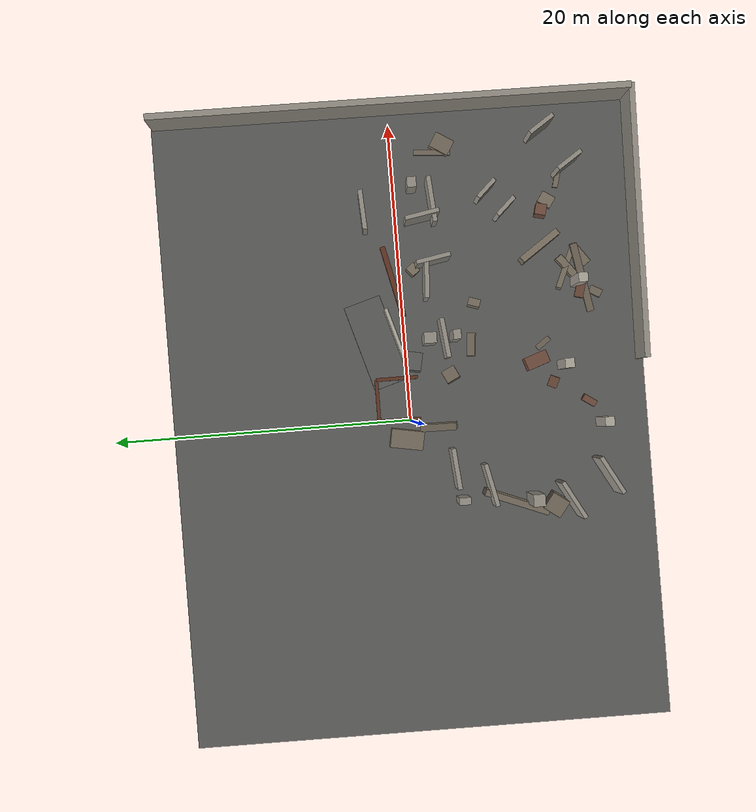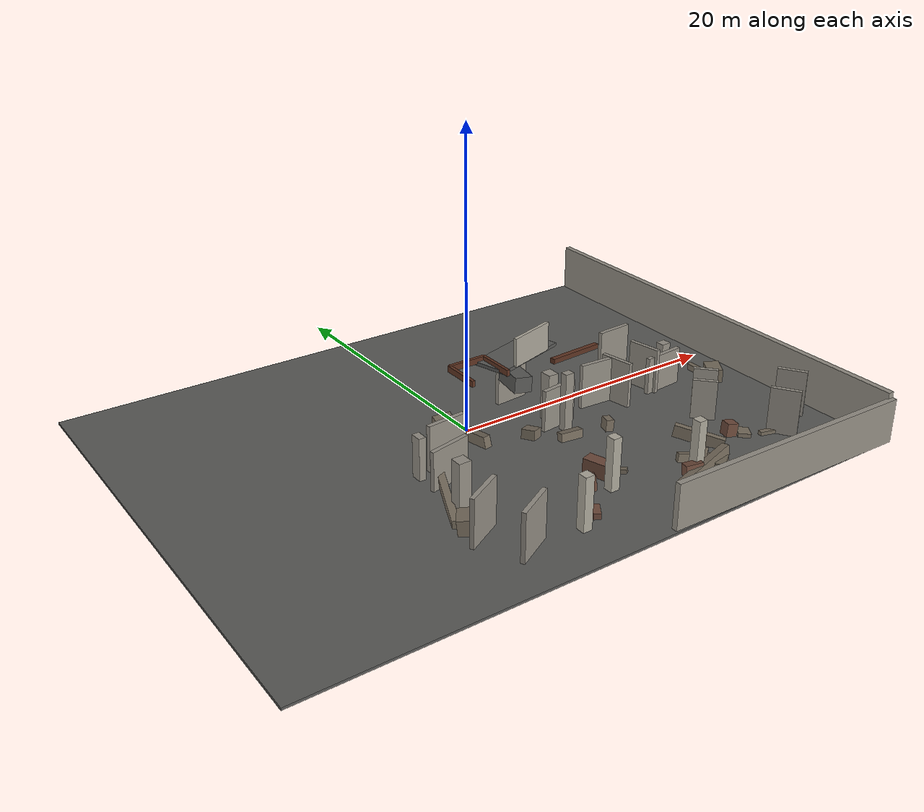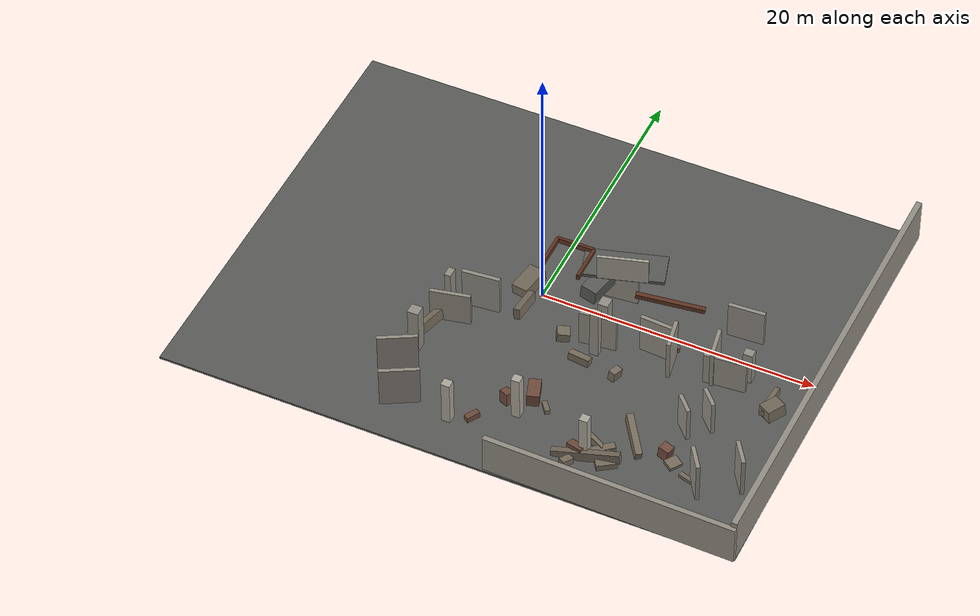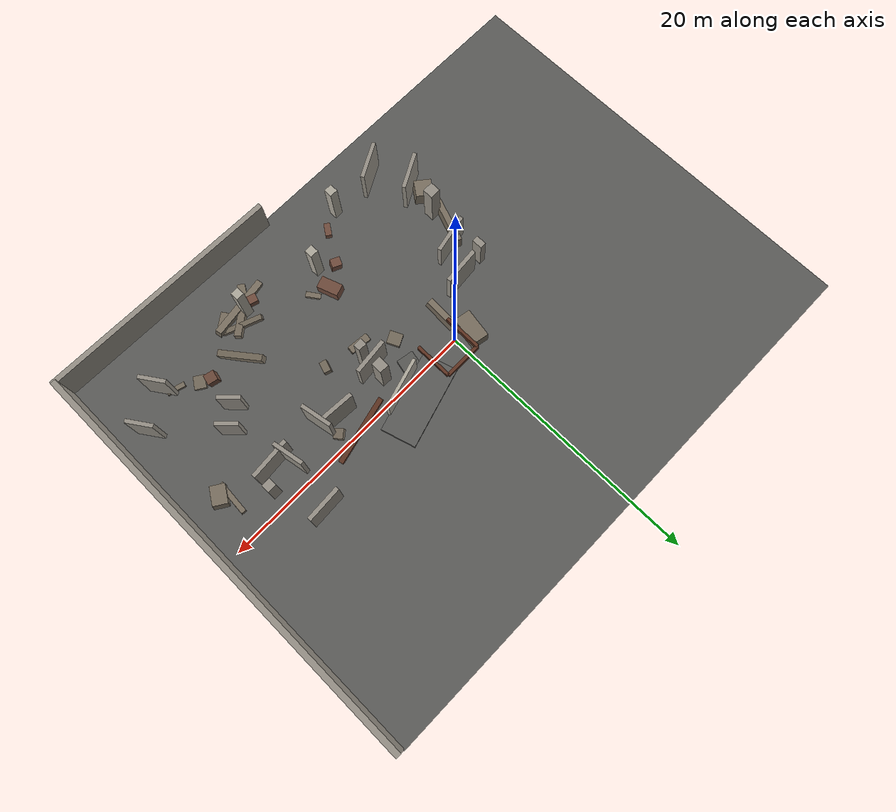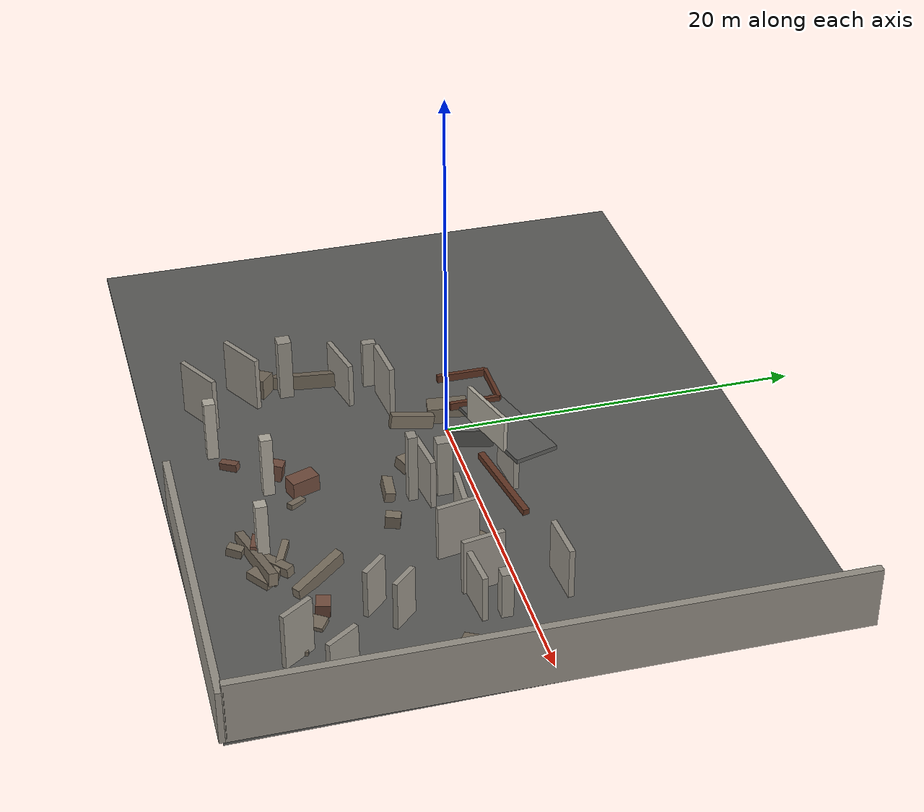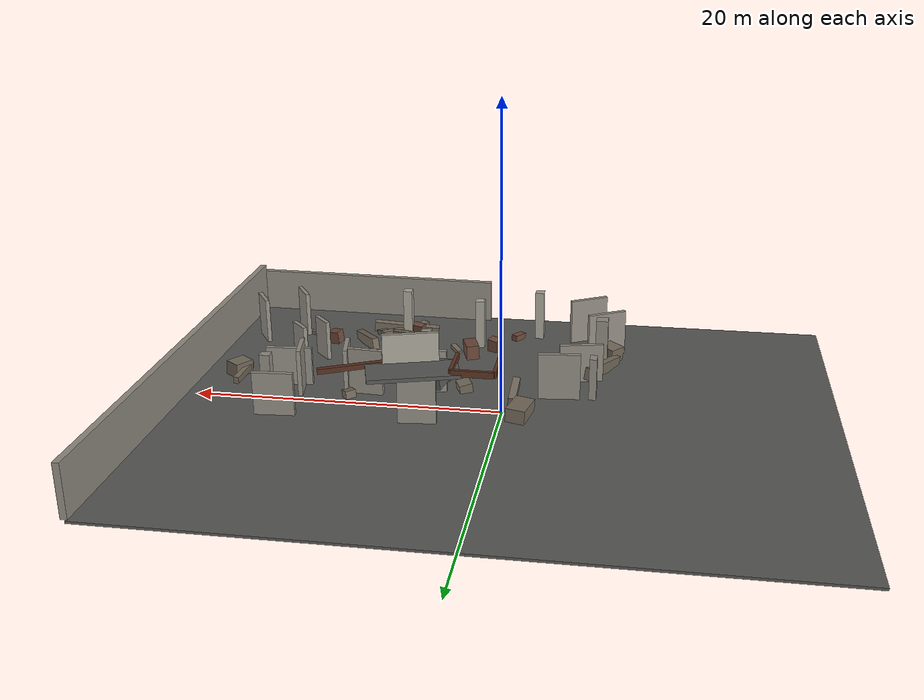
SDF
<sdf version="1.6">
 <model name="ruins_urban_01_medium">
  <static>true</static>
  <link name="000_floor_slab">
   <pose>0.00000 0.00000 -0.08000 0.00000 0.00000 0.00000</pose>
   <visual name="visual">
    <geometry><box><size>42.00000 32.00000 0.16000</size></box></geometry>
    <material>
     <ambient>0.350 0.350 0.340 1</ambient>
     <diffuse>0.350 0.350 0.340 1</diffuse>
     <specular>0.03 0.03 0.03 1</specular>
    </material>
   </visual>
   <collision name="collision">
    <geometry><box><size>42.00000 32.00000 0.16000</size></box></geometry>
    <surface>
     <contact><collide_bitmask>0x01</collide_bitmask></contact>
     <friction><ode><mu>1.0</mu><mu2>1.0</mu2></ode></friction>
    </surface>
   </collision>
  </link>
  <link name="004_south_boundary_east">
   <pose>12.00000 -15.85000 1.50000 0.00000 0.00000 -0.01800</pose>
   <visual name="visual">
    <geometry><box><size>18.00000 0.38000 3.00000</size></box></geometry>
    <material>
     <ambient>0.580 0.560 0.520 1</ambient>
     <diffuse>0.580 0.560 0.520 1</diffuse>
     <specular>0.03 0.03 0.03 1</specular>
    </material>
   </visual>
   <collision name="collision">
    <geometry><box><size>18.00000 0.38000 3.00000</size></box></geometry>
    <surface>
     <contact><collide_bitmask>0x01</collide_bitmask></contact>
     <friction><ode><mu>1.0</mu><mu2>1.0</mu2></ode></friction>
    </surface>
   </collision>
  </link>
  <link name="007_east_boundary">
   <pose>20.95000 0.00000 1.70000 0.00000 0.00000 -0.01000</pose>
   <visual name="visual">
    <geometry><box><size>0.42000 31.80000 3.40000</size></box></geometry>
    <material>
     <ambient>0.580 0.560 0.520 1</ambient>
     <diffuse>0.580 0.560 0.520 1</diffuse>
     <specular>0.03 0.03 0.03 1</specular>
    </material>
   </visual>
   <collision name="collision">
    <geometry><box><size>0.42000 31.80000 3.40000</size></box></geometry>
    <surface>
     <contact><collide_bitmask>0x01</collide_bitmask></contact>
     <friction><ode><mu>1.0</mu><mu2>1.0</mu2></ode></friction>
    </surface>
   </collision>
  </link>
  <link name="024_ground_corridor_s4_s5_left">
   <pose>-5.96349 -10.19194 1.57500 0.00000 0.00000 0.49935</pose>
   <visual name="visual">
    <geometry><box><size>2.76498 0.28000 3.15000</size></box></geometry>
    <material>
     <ambient>0.580 0.560 0.520 1</ambient>
     <diffuse>0.580 0.560 0.520 1</diffuse>
     <specular>0.03 0.03 0.03 1</specular>
    </material>
   </visual>
   <collision name="collision">
    <geometry><box><size>2.76498 0.28000 3.15000</size></box></geometry>
    <surface>
     <contact><collide_bitmask>0x01</collide_bitmask></contact>
     <friction><ode><mu>1.0</mu><mu2>1.0</mu2></ode></friction>
    </surface>
   </collision>
  </link>
  <link name="025_ground_corridor_s4_s5_right">
   <pose>-4.53651 -12.80806 1.57500 0.00000 0.00000 0.49935</pose>
   <visual name="visual">
    <geometry><box><size>2.76498 0.28000 3.15000</size></box></geometry>
    <material>
     <ambient>0.580 0.560 0.520 1</ambient>
     <diffuse>0.580 0.560 0.520 1</diffuse>
     <specular>0.03 0.03 0.03 1</specular>
    </material>
   </visual>
   <collision name="collision">
    <geometry><box><size>2.76498 0.28000 3.15000</size></box></geometry>
    <surface>
     <contact><collide_bitmask>0x01</collide_bitmask></contact>
     <friction><ode><mu>1.0</mu><mu2>1.0</mu2></ode></friction>
    </surface>
   </collision>
  </link>
  <link name="032_ground_corridor_g7_es1_left">
   <pose>13.46759 -1.69253 1.57500 0.00000 0.00000 -1.39713</pose>
   <visual name="visual">
    <geometry><box><size>2.28705 0.28000 3.15000</size></box></geometry>
    <material>
     <ambient>0.580 0.560 0.520 1</ambient>
     <diffuse>0.580 0.560 0.520 1</diffuse>
     <specular>0.03 0.03 0.03 1</specular>
    </material>
   </visual>
   <collision name="collision">
    <geometry><box><size>2.28705 0.28000 3.15000</size></box></geometry>
    <surface>
     <contact><collide_bitmask>0x01</collide_bitmask></contact>
     <friction><ode><mu>1.0</mu><mu2>1.0</mu2></ode></friction>
    </surface>
   </collision>
  </link>
  <link name="033_ground_corridor_g7_es1_right">
   <pose>10.53241 -2.20747 1.57500 0.00000 0.00000 -1.39713</pose>
   <visual name="visual">
    <geometry><box><size>2.28705 0.28000 3.15000</size></box></geometry>
    <material>
     <ambient>0.580 0.560 0.520 1</ambient>
     <diffuse>0.580 0.560 0.520 1</diffuse>
     <specular>0.03 0.03 0.03 1</specular>
    </material>
   </visual>
   <collision name="collision">
    <geometry><box><size>2.28705 0.28000 3.15000</size></box></geometry>
    <surface>
     <contact><collide_bitmask>0x01</collide_bitmask></contact>
     <friction><ode><mu>1.0</mu><mu2>1.0</mu2></ode></friction>
    </surface>
   </collision>
  </link>
  <link name="034_ground_corridor_es1_es2_left">
   <pose>14.87840 -6.05557 1.37500 0.00000 0.00000 -0.81317</pose>
   <visual name="visual">
    <geometry><box><size>1.59313 0.28000 2.75000</size></box></geometry>
    <material>
     <ambient>0.580 0.560 0.520 1</ambient>
     <diffuse>0.580 0.560 0.520 1</diffuse>
     <specular>0.03 0.03 0.03 1</specular>
    </material>
   </visual>
   <collision name="collision">
    <geometry><box><size>1.59313 0.28000 2.75000</size></box></geometry>
    <surface>
     <contact><collide_bitmask>0x01</collide_bitmask></contact>
     <friction><ode><mu>1.0</mu><mu2>1.0</mu2></ode></friction>
    </surface>
   </collision>
  </link>
  <link name="035_ground_corridor_es1_es2_right">
   <pose>13.62160 -7.24443 1.37500 0.00000 0.00000 -0.81317</pose>
   <visual name="visual">
    <geometry><box><size>1.59313 0.28000 2.75000</size></box></geometry>
    <material>
     <ambient>0.580 0.560 0.520 1</ambient>
     <diffuse>0.580 0.560 0.520 1</diffuse>
     <specular>0.03 0.03 0.03 1</specular>
    </material>
   </visual>
   <collision name="collision">
    <geometry><box><size>1.59313 0.28000 2.75000</size></box></geometry>
    <surface>
     <contact><collide_bitmask>0x01</collide_bitmask></contact>
     <friction><ode><mu>1.0</mu><mu2>1.0</mu2></ode></friction>
    </surface>
   </collision>
  </link>
  <link name="036_ground_corridor_es2_dead_se_left">
   <pose>18.73975 -9.92350 1.57500 0.00000 0.00000 -0.98279</pose>
   <visual name="visual">
    <geometry><box><size>1.90833 0.28000 3.15000</size></box></geometry>
    <material>
     <ambient>0.580 0.560 0.520 1</ambient>
     <diffuse>0.580 0.560 0.520 1</diffuse>
     <specular>0.03 0.03 0.03 1</specular>
    </material>
   </visual>
   <collision name="collision">
    <geometry><box><size>1.90833 0.28000 3.15000</size></box></geometry>
    <surface>
     <contact><collide_bitmask>0x01</collide_bitmask></contact>
     <friction><ode><mu>1.0</mu><mu2>1.0</mu2></ode></friction>
    </surface>
   </collision>
  </link>
  <link name="037_ground_corridor_es2_dead_se_right">
   <pose>16.26025 -11.57650 1.57500 0.00000 0.00000 -0.98279</pose>
   <visual name="visual">
    <geometry><box><size>1.90833 0.28000 3.15000</size></box></geometry>
    <material>
     <ambient>0.580 0.560 0.520 1</ambient>
     <diffuse>0.580 0.560 0.520 1</diffuse>
     <specular>0.03 0.03 0.03 1</specular>
    </material>
   </visual>
   <collision name="collision">
    <geometry><box><size>1.90833 0.28000 3.15000</size></box></geometry>
    <surface>
     <contact><collide_bitmask>0x01</collide_bitmask></contact>
     <friction><ode><mu>1.0</mu><mu2>1.0</mu2></ode></friction>
    </surface>
   </collision>
  </link>
  <link name="041_spine_broken_panel_05">
   <pose>5.00000 2.05000 1.55000 0.00000 0.00000 0.08314</pose>
   <visual name="visual">
    <geometry><box><size>2.40832 0.30000 3.10000</size></box></geometry>
    <material>
     <ambient>0.580 0.560 0.520 1</ambient>
     <diffuse>0.580 0.560 0.520 1</diffuse>
     <specular>0.03 0.03 0.03 1</specular>
    </material>
   </visual>
   <collision name="collision">
    <geometry><box><size>2.40832 0.30000 3.10000</size></box></geometry>
    <surface>
     <contact><collide_bitmask>0x01</collide_bitmask></contact>
     <friction><ode><mu>1.0</mu><mu2>1.0</mu2></ode></friction>
    </surface>
   </collision>
  </link>
  <link name="043_spine_broken_panel_07">
   <pose>14.10000 2.17500 1.42500 0.00000 0.00000 0.05763</pose>
   <visual name="visual">
    <geometry><box><size>2.60432 0.30000 2.85000</size></box></geometry>
    <material>
     <ambient>0.580 0.560 0.520 1</ambient>
     <diffuse>0.580 0.560 0.520 1</diffuse>
     <specular>0.03 0.03 0.03 1</specular>
    </material>
   </visual>
   <collision name="collision">
    <geometry><box><size>2.60432 0.30000 2.85000</size></box></geometry>
    <surface>
     <contact><collide_bitmask>0x01</collide_bitmask></contact>
     <friction><ode><mu>1.0</mu><mu2>1.0</mu2></ode></friction>
    </surface>
   </collision>
  </link>
  <link name="046_spine_broken_panel_11">
   <pose>-3.35000 -2.67500 1.55000 0.00000 0.00000 0.09233</pose>
   <visual name="visual">
    <geometry><box><size>2.71155 0.30000 3.10000</size></box></geometry>
    <material>
     <ambient>0.580 0.560 0.520 1</ambient>
     <diffuse>0.580 0.560 0.520 1</diffuse>
     <specular>0.03 0.03 0.03 1</specular>
    </material>
   </visual>
   <collision name="collision">
    <geometry><box><size>2.71155 0.30000 3.10000</size></box></geometry>
    <surface>
     <contact><collide_bitmask>0x01</collide_bitmask></contact>
     <friction><ode><mu>1.0</mu><mu2>1.0</mu2></ode></friction>
    </surface>
   </collision>
  </link>
  <link name="047_spine_broken_panel_13">
   <pose>5.30000 -2.60000 1.42500 0.00000 0.00000 0.11488</pose>
   <visual name="visual">
    <geometry><box><size>2.61725 0.30000 2.85000</size></box></geometry>
    <material>
     <ambient>0.580 0.560 0.520 1</ambient>
     <diffuse>0.580 0.560 0.520 1</diffuse>
     <specular>0.03 0.03 0.03 1</specular>
    </material>
   </visual>
   <collision name="collision">
    <geometry><box><size>2.61725 0.30000 2.85000</size></box></geometry>
    <surface>
     <contact><collide_bitmask>0x01</collide_bitmask></contact>
     <friction><ode><mu>1.0</mu><mu2>1.0</mu2></ode></friction>
    </surface>
   </collision>
  </link>
  <link name="048_spine_broken_panel_14">
   <pose>9.20000 -1.67500 1.55000 0.00000 0.00000 -0.06242</pose>
   <visual name="visual">
    <geometry><box><size>2.40468 0.30000 3.10000</size></box></geometry>
    <material>
     <ambient>0.580 0.560 0.520 1</ambient>
     <diffuse>0.580 0.560 0.520 1</diffuse>
     <specular>0.03 0.03 0.03 1</specular>
    </material>
   </visual>
   <collision name="collision">
    <geometry><box><size>2.40468 0.30000 3.10000</size></box></geometry>
    <surface>
     <contact><collide_bitmask>0x01</collide_bitmask></contact>
     <friction><ode><mu>1.0</mu><mu2>1.0</mu2></ode></friction>
    </surface>
   </collision>
  </link>
  <link name="049_spine_broken_panel_15">
   <pose>14.50000 -2.42500 1.30000 0.00000 0.00000 0.08314</pose>
   <visual name="visual">
    <geometry><box><size>3.01040 0.30000 2.60000</size></box></geometry>
    <material>
     <ambient>0.580 0.560 0.520 1</ambient>
     <diffuse>0.580 0.560 0.520 1</diffuse>
     <specular>0.03 0.03 0.03 1</specular>
    </material>
   </visual>
   <collision name="collision">
    <geometry><box><size>3.01040 0.30000 2.60000</size></box></geometry>
    <surface>
     <contact><collide_bitmask>0x01</collide_bitmask></contact>
     <friction><ode><mu>1.0</mu><mu2>1.0</mu2></ode></friction>
    </surface>
   </collision>
  </link>
  <link name="057_fixed_column_09">
   <pose>-1.00000 -12.80000 1.75000 0.00000 0.00000 0.00000</pose>
   <visual name="visual">
    <geometry><box><size>0.62000 0.62000 3.50000</size></box></geometry>
    <material>
     <ambient>0.680 0.660 0.610 1</ambient>
     <diffuse>0.680 0.660 0.610 1</diffuse>
     <specular>0.03 0.03 0.03 1</specular>
    </material>
   </visual>
   <collision name="collision">
    <geometry><box><size>0.62000 0.62000 3.50000</size></box></geometry>
    <surface>
     <contact><collide_bitmask>0x01</collide_bitmask></contact>
     <friction><ode><mu>1.0</mu><mu2>1.0</mu2></ode></friction>
    </surface>
   </collision>
  </link>
  <link name="058_fixed_column_10">
   <pose>3.00000 -10.50000 1.75000 0.00000 0.00000 0.00000</pose>
   <visual name="visual">
    <geometry><box><size>0.62000 0.62000 3.50000</size></box></geometry>
    <material>
     <ambient>0.680 0.660 0.610 1</ambient>
     <diffuse>0.680 0.660 0.610 1</diffuse>
     <specular>0.03 0.03 0.03 1</specular>
    </material>
   </visual>
   <collision name="collision">
    <geometry><box><size>0.62000 0.62000 3.50000</size></box></geometry>
    <surface>
     <contact><collide_bitmask>0x01</collide_bitmask></contact>
     <friction><ode><mu>1.0</mu><mu2>1.0</mu2></ode></friction>
    </surface>
   </collision>
  </link>
  <link name="059_fixed_column_11">
   <pose>8.50000 -11.80000 1.75000 0.00000 0.00000 0.00000</pose>
   <visual name="visual">
    <geometry><box><size>0.62000 0.62000 3.50000</size></box></geometry>
    <material>
     <ambient>0.680 0.660 0.610 1</ambient>
     <diffuse>0.680 0.660 0.610 1</diffuse>
     <specular>0.03 0.03 0.03 1</specular>
    </material>
   </visual>
   <collision name="collision">
    <geometry><box><size>0.62000 0.62000 3.50000</size></box></geometry>
    <surface>
     <contact><collide_bitmask>0x01</collide_bitmask></contact>
     <friction><ode><mu>1.0</mu><mu2>1.0</mu2></ode></friction>
    </surface>
   </collision>
  </link>
  <link name="060_overflight_rubble_gate">
   <pose>-1.20000 0.35000 0.45000 0.05000 -0.06000 -0.18000</pose>
   <visual name="visual">
    <geometry><box><size>1.25000 2.20000 0.90000</size></box></geometry>
    <material>
     <ambient>0.460 0.420 0.360 1</ambient>
     <diffuse>0.460 0.420 0.360 1</diffuse>
     <specular>0.03 0.03 0.03 1</specular>
    </material>
   </visual>
   <collision name="collision">
    <geometry><box><size>1.25000 2.20000 0.90000</size></box></geometry>
    <surface>
     <contact><collide_bitmask>0x01</collide_bitmask></contact>
     <friction><ode><mu>1.0</mu><mu2>1.0</mu2></ode></friction>
    </surface>
   </collision>
  </link>
  <link name="061_underflight_hanging_gate">
   <pose>4.00000 0.25000 2.55000 -0.04000 0.08000 -0.20000</pose>
   <visual name="visual">
    <geometry><box><size>1.20000 2.40000 1.05000</size></box></geometry>
    <material>
     <ambient>0.350 0.350 0.340 1</ambient>
     <diffuse>0.350 0.350 0.340 1</diffuse>
     <specular>0.03 0.03 0.03 1</specular>
    </material>
   </visual>
   <collision name="collision">
    <geometry><box><size>1.20000 2.40000 1.05000</size></box></geometry>
    <surface>
     <contact><collide_bitmask>0x01</collide_bitmask></contact>
     <friction><ode><mu>1.0</mu><mu2>1.0</mu2></ode></friction>
    </surface>
   </collision>
  </link>
  <link name="062_east_slanted_beam">
   <pose>9.20000 0.55000 2.85000 0.00000 0.10000 0.22000</pose>
   <visual name="visual">
    <geometry><box><size>4.80000 0.34000 0.34000</size></box></geometry>
    <material>
     <ambient>0.370 0.200 0.130 1</ambient>
     <diffuse>0.370 0.200 0.130 1</diffuse>
     <specular>0.03 0.03 0.03 1</specular>
    </material>
   </visual>
   <collision name="collision">
    <geometry><box><size>4.80000 0.34000 0.34000</size></box></geometry>
    <surface>
     <contact><collide_bitmask>0x01</collide_bitmask></contact>
     <friction><ode><mu>1.0</mu><mu2>1.0</mu2></ode></friction>
    </surface>
   </collision>
  </link>
  <link name="075_upper_walkway_u4_uc">
   <pose>5.25000 1.90000 3.36000 0.00000 0.00000 -2.85626</pose>
   <visual name="visual">
    <geometry><box><size>5.71601 2.45000 0.24000</size></box></geometry>
    <material>
     <ambient>0.350 0.350 0.340 1</ambient>
     <diffuse>0.350 0.350 0.340 1</diffuse>
     <specular>0.03 0.03 0.03 1</specular>
    </material>
   </visual>
   <collision name="collision">
    <geometry><box><size>5.71601 2.45000 0.24000</size></box></geometry>
    <surface>
     <contact><collide_bitmask>0x01</collide_bitmask></contact>
     <friction><ode><mu>1.0</mu><mu2>1.0</mu2></ode></friction>
    </surface>
   </collision>
  </link>
  <link name="076_upper_corridor_u4_uc_left">
   <pose>5.59762 0.71493 4.38000 0.00000 0.00000 -2.85626</pose>
   <visual name="visual">
    <geometry><box><size>3.51601 0.22000 2.00000</size></box></geometry>
    <material>
     <ambient>0.680 0.660 0.610 1</ambient>
     <diffuse>0.680 0.660 0.610 1</diffuse>
     <specular>0.03 0.03 0.03 1</specular>
    </material>
   </visual>
   <collision name="collision">
    <geometry><box><size>3.51601 0.22000 2.00000</size></box></geometry>
    <surface>
     <contact><collide_bitmask>0x01</collide_bitmask></contact>
     <friction><ode><mu>1.0</mu><mu2>1.0</mu2></ode></friction>
    </surface>
   </collision>
  </link>
  <link name="088_connector_02_frame_0">
   <pose>0.15000 0.80000 3.55000 0.00000 0.00000 0.00000</pose>
   <visual name="visual">
    <geometry><box><size>0.22000 2.70000 0.42000</size></box></geometry>
    <material>
     <ambient>0.370 0.200 0.130 1</ambient>
     <diffuse>0.370 0.200 0.130 1</diffuse>
     <specular>0.03 0.03 0.03 1</specular>
    </material>
   </visual>
   <collision name="collision">
    <geometry><box><size>0.22000 2.70000 0.42000</size></box></geometry>
    <surface>
     <contact><collide_bitmask>0x01</collide_bitmask></contact>
     <friction><ode><mu>1.0</mu><mu2>1.0</mu2></ode></friction>
    </surface>
   </collision>
  </link>
  <link name="089_connector_02_frame_1">
   <pose>2.85000 0.80000 3.55000 0.00000 0.00000 0.00000</pose>
   <visual name="visual">
    <geometry><box><size>0.22000 2.70000 0.42000</size></box></geometry>
    <material>
     <ambient>0.370 0.200 0.130 1</ambient>
     <diffuse>0.370 0.200 0.130 1</diffuse>
     <specular>0.03 0.03 0.03 1</specular>
    </material>
   </visual>
   <collision name="collision">
    <geometry><box><size>0.22000 2.70000 0.42000</size></box></geometry>
    <surface>
     <contact><collide_bitmask>0x01</collide_bitmask></contact>
     <friction><ode><mu>1.0</mu><mu2>1.0</mu2></ode></friction>
    </surface>
   </collision>
  </link>
  <link name="090_connector_02_frame_3">
   <pose>1.50000 2.15000 3.55000 0.00000 0.00000 0.00000</pose>
   <visual name="visual">
    <geometry><box><size>2.70000 0.22000 0.42000</size></box></geometry>
    <material>
     <ambient>0.370 0.200 0.130 1</ambient>
     <diffuse>0.370 0.200 0.130 1</diffuse>
     <specular>0.03 0.03 0.03 1</specular>
    </material>
   </visual>
   <collision name="collision">
    <geometry><box><size>2.70000 0.22000 0.42000</size></box></geometry>
    <surface>
     <contact><collide_bitmask>0x01</collide_bitmask></contact>
     <friction><ode><mu>1.0</mu><mu2>1.0</mu2></ode></friction>
    </surface>
   </collision>
  </link>
  <link name="094_medium_random_column_03">
   <pose>5.34919 -1.59204 1.65790 0.00000 0.00000 0.00000</pose>
   <visual name="visual">
    <geometry><box><size>0.72321 0.82451 3.31580</size></box></geometry>
    <material>
     <ambient>0.580 0.560 0.520 1</ambient>
     <diffuse>0.580 0.560 0.520 1</diffuse>
     <specular>0.03 0.03 0.03 1</specular>
    </material>
   </visual>
   <collision name="collision">
    <geometry><box><size>0.72321 0.82451 3.31580</size></box></geometry>
    <surface>
     <contact><collide_bitmask>0x01</collide_bitmask></contact>
     <friction><ode><mu>1.0</mu><mu2>1.0</mu2></ode></friction>
    </surface>
   </collision>
  </link>
  <link name="095_medium_random_column_04">
   <pose>15.68716 -1.18079 1.30123 0.00000 0.00000 0.00000</pose>
   <visual name="visual">
    <geometry><box><size>0.68079 0.61655 2.60247</size></box></geometry>
    <material>
     <ambient>0.580 0.560 0.520 1</ambient>
     <diffuse>0.580 0.560 0.520 1</diffuse>
     <specular>0.03 0.03 0.03 1</specular>
    </material>
   </visual>
   <collision name="collision">
    <geometry><box><size>0.68079 0.61655 2.60247</size></box></geometry>
    <surface>
     <contact><collide_bitmask>0x01</collide_bitmask></contact>
     <friction><ode><mu>1.0</mu><mu2>1.0</mu2></ode></friction>
    </surface>
   </collision>
  </link>
  <link name="097_medium_random_column_06">
   <pose>-5.51084 -3.06976 1.41315 0.00000 0.00000 0.00000</pose>
   <visual name="visual">
    <geometry><box><size>0.47084 0.76548 2.82630</size></box></geometry>
    <material>
     <ambient>0.580 0.560 0.520 1</ambient>
     <diffuse>0.580 0.560 0.520 1</diffuse>
     <specular>0.03 0.03 0.03 1</specular>
    </material>
   </visual>
   <collision name="collision">
    <geometry><box><size>0.47084 0.76548 2.82630</size></box></geometry>
    <surface>
     <contact><collide_bitmask>0x01</collide_bitmask></contact>
     <friction><ode><mu>1.0</mu><mu2>1.0</mu2></ode></friction>
    </surface>
   </collision>
  </link>
  <link name="098_medium_random_column_07">
   <pose>-5.77268 -7.83261 1.79768 0.00000 0.00000 0.00000</pose>
   <visual name="visual">
    <geometry><box><size>0.79634 0.77568 3.59535</size></box></geometry>
    <material>
     <ambient>0.580 0.560 0.520 1</ambient>
     <diffuse>0.580 0.560 0.520 1</diffuse>
     <specular>0.03 0.03 0.03 1</specular>
    </material>
   </visual>
   <collision name="collision">
    <geometry><box><size>0.79634 0.77568 3.59535</size></box></geometry>
    <surface>
     <contact><collide_bitmask>0x01</collide_bitmask></contact>
     <friction><ode><mu>1.0</mu><mu2>1.0</mu2></ode></friction>
    </surface>
   </collision>
  </link>
  <link name="099_medium_random_column_08">
   <pose>5.40691 -3.30240 1.99149 0.00000 0.00000 0.00000</pose>
   <visual name="visual">
    <geometry><box><size>0.63506 0.50959 3.98299</size></box></geometry>
    <material>
     <ambient>0.580 0.560 0.520 1</ambient>
     <diffuse>0.580 0.560 0.520 1</diffuse>
     <specular>0.03 0.03 0.03 1</specular>
    </material>
   </visual>
   <collision name="collision">
    <geometry><box><size>0.63506 0.50959 3.98299</size></box></geometry>
    <surface>
     <contact><collide_bitmask>0x01</collide_bitmask></contact>
     <friction><ode><mu>1.0</mu><mu2>1.0</mu2></ode></friction>
    </surface>
   </collision>
  </link>
  <link name="103_medium_rubble_002">
   <pose>15.60006 -11.09232 0.12700 0.00833 -0.01240 2.88155</pose>
   <visual name="visual">
    <geometry><box><size>1.30206 0.34263 0.25400</size></box></geometry>
    <material>
     <ambient>0.460 0.420 0.360 1</ambient>
     <diffuse>0.460 0.420 0.360 1</diffuse>
     <specular>0.03 0.03 0.03 1</specular>
    </material>
   </visual>
   <collision name="collision">
    <geometry><box><size>1.30206 0.34263 0.25400</size></box></geometry>
    <surface>
     <contact><collide_bitmask>0x01</collide_bitmask></contact>
     <friction><ode><mu>1.0</mu><mu2>1.0</mu2></ode></friction>
    </surface>
   </collision>
  </link>
  <link name="112_medium_rubble_011">
   <pose>18.39768 -3.46060 0.48952 -0.05956 -0.05038 1.01172</pose>
   <visual name="visual">
    <geometry><box><size>1.36457 1.04188 0.97905</size></box></geometry>
    <material>
     <ambient>0.460 0.420 0.360 1</ambient>
     <diffuse>0.460 0.420 0.360 1</diffuse>
     <specular>0.03 0.03 0.03 1</specular>
    </material>
   </visual>
   <collision name="collision">
    <geometry><box><size>1.36457 1.04188 0.97905</size></box></geometry>
    <surface>
     <contact><collide_bitmask>0x01</collide_bitmask></contact>
     <friction><ode><mu>1.0</mu><mu2>1.0</mu2></ode></friction>
    </surface>
   </collision>
  </link>
  <link name="113_medium_rubble_012">
   <pose>0.45373 -12.12196 0.21431 -0.05458 0.03944 2.54862</pose>
   <visual name="visual">
    <geometry><box><size>0.45477 0.97718 0.42861</size></box></geometry>
    <material>
     <ambient>0.430 0.290 0.230 1</ambient>
     <diffuse>0.430 0.290 0.230 1</diffuse>
     <specular>0.03 0.03 0.03 1</specular>
    </material>
   </visual>
   <collision name="collision">
    <geometry><box><size>0.45477 0.97718 0.42861</size></box></geometry>
    <surface>
     <contact><collide_bitmask>0x01</collide_bitmask></contact>
     <friction><ode><mu>1.0</mu><mu2>1.0</mu2></ode></friction>
    </surface>
   </collision>
  </link>
  <link name="114_medium_rubble_013">
   <pose>2.88423 -2.94290 0.32165 0.15391 0.08540 2.02647</pose>
   <visual name="visual">
    <geometry><box><size>0.94433 0.88166 0.64331</size></box></geometry>
    <material>
     <ambient>0.460 0.420 0.360 1</ambient>
     <diffuse>0.460 0.420 0.360 1</diffuse>
     <specular>0.03 0.03 0.03 1</specular>
    </material>
   </visual>
   <collision name="collision">
    <geometry><box><size>0.94433 0.88166 0.64331</size></box></geometry>
    <surface>
     <contact><collide_bitmask>0x01</collide_bitmask></contact>
     <friction><ode><mu>1.0</mu><mu2>1.0</mu2></ode></friction>
    </surface>
   </collision>
  </link>
  <link name="116_medium_rubble_015">
   <pose>4.81344 -4.45623 0.28239 0.16788 -0.01546 3.04333</pose>
   <visual name="visual">
    <geometry><box><size>1.55704 0.54246 0.56477</size></box></geometry>
    <material>
     <ambient>0.460 0.420 0.360 1</ambient>
     <diffuse>0.460 0.420 0.360 1</diffuse>
     <specular>0.03 0.03 0.03 1</specular>
    </material>
   </visual>
   <collision name="collision">
    <geometry><box><size>1.55704 0.54246 0.56477</size></box></geometry>
    <surface>
     <contact><collide_bitmask>0x01</collide_bitmask></contact>
     <friction><ode><mu>1.0</mu><mu2>1.0</mu2></ode></friction>
    </surface>
   </collision>
  </link>
  <link name="119_medium_rubble_018">
   <pose>-6.30902 -9.30103 0.54829 -0.10677 -0.06117 0.94774</pose>
   <visual name="visual">
    <geometry><box><size>1.28281 1.25185 1.09658</size></box></geometry>
    <material>
     <ambient>0.460 0.420 0.360 1</ambient>
     <diffuse>0.460 0.420 0.360 1</diffuse>
     <specular>0.03 0.03 0.03 1</specular>
    </material>
   </visual>
   <collision name="collision">
    <geometry><box><size>1.28281 1.25185 1.09658</size></box></geometry>
    <surface>
     <contact><collide_bitmask>0x01</collide_bitmask></contact>
     <friction><ode><mu>1.0</mu><mu2>1.0</mu2></ode></friction>
    </surface>
   </collision>
  </link>
  <link name="120_medium_rubble_019">
   <pose>4.55203 -9.32481 0.14858 -0.14405 0.04492 0.64242</pose>
   <visual name="visual">
    <geometry><box><size>0.36789 1.06794 0.29717</size></box></geometry>
    <material>
     <ambient>0.460 0.420 0.360 1</ambient>
     <diffuse>0.460 0.420 0.360 1</diffuse>
     <specular>0.03 0.03 0.03 1</specular>
    </material>
   </visual>
   <collision name="collision">
    <geometry><box><size>0.36789 1.06794 0.29717</size></box></geometry>
    <surface>
     <contact><collide_bitmask>0x01</collide_bitmask></contact>
     <friction><ode><mu>1.0</mu><mu2>1.0</mu2></ode></friction>
    </surface>
   </collision>
  </link>
  <link name="125_medium_rubble_024">
   <pose>3.39754 -8.73200 0.49351 0.02717 -0.01368 1.90028</pose>
   <visual name="visual">
    <geometry><box><size>1.56813 0.87281 0.98701</size></box></geometry>
    <material>
     <ambient>0.430 0.290 0.230 1</ambient>
     <diffuse>0.430 0.290 0.230 1</diffuse>
     <specular>0.03 0.03 0.03 1</specular>
    </material>
   </visual>
   <collision name="collision">
    <geometry><box><size>1.56813 0.87281 0.98701</size></box></geometry>
    <surface>
     <contact><collide_bitmask>0x01</collide_bitmask></contact>
     <friction><ode><mu>1.0</mu><mu2>1.0</mu2></ode></friction>
    </surface>
   </collision>
  </link>
  <link name="128_medium_rubble_027">
   <pose>7.57615 -4.85086 0.39397 0.09384 0.06896 1.24374</pose>
   <visual name="visual">
    <geometry><box><size>0.80488 0.51849 0.78793</size></box></geometry>
    <material>
     <ambient>0.460 0.420 0.360 1</ambient>
     <diffuse>0.460 0.420 0.360 1</diffuse>
     <specular>0.03 0.03 0.03 1</specular>
    </material>
   </visual>
   <collision name="collision">
    <geometry><box><size>0.80488 0.51849 0.78793</size></box></geometry>
    <surface>
     <contact><collide_bitmask>0x01</collide_bitmask></contact>
     <friction><ode><mu>1.0</mu><mu2>1.0</mu2></ode></friction>
    </surface>
   </collision>
  </link>
  <link name="129_medium_rubble_028">
   <pose>7.98661 -12.04960 0.41300 -0.05635 0.11439 1.29191</pose>
   <visual name="visual">
    <geometry><box><size>0.58629 1.15464 0.82600</size></box></geometry>
    <material>
     <ambient>0.430 0.290 0.230 1</ambient>
     <diffuse>0.430 0.290 0.230 1</diffuse>
     <specular>0.03 0.03 0.03 1</specular>
    </material>
   </visual>
   <collision name="collision">
    <geometry><box><size>0.58629 1.15464 0.82600</size></box></geometry>
    <surface>
     <contact><collide_bitmask>0x01</collide_bitmask></contact>
     <friction><ode><mu>1.0</mu><mu2>1.0</mu2></ode></friction>
    </surface>
   </collision>
  </link>
  <link name="134_medium_rubble_033">
   <pose>14.17897 -10.26619 0.14147 0.01333 -0.09068 2.54574</pose>
   <visual name="visual">
    <geometry><box><size>0.82906 0.95327 0.28293</size></box></geometry>
    <material>
     <ambient>0.460 0.420 0.360 1</ambient>
     <diffuse>0.460 0.420 0.360 1</diffuse>
     <specular>0.03 0.03 0.03 1</specular>
    </material>
   </visual>
   <collision name="collision">
    <geometry><box><size>0.82906 0.95327 0.28293</size></box></geometry>
    <surface>
     <contact><collide_bitmask>0x01</collide_bitmask></contact>
     <friction><ode><mu>1.0</mu><mu2>1.0</mu2></ode></friction>
    </surface>
   </collision>
  </link>
  <link name="138_medium_rubble_037">
   <pose>10.12676 -0.91239 0.25962 0.13016 0.02665 0.68077</pose>
   <visual name="visual">
    <geometry><box><size>0.70069 0.65649 0.51924</size></box></geometry>
    <material>
     <ambient>0.460 0.420 0.360 1</ambient>
     <diffuse>0.460 0.420 0.360 1</diffuse>
     <specular>0.03 0.03 0.03 1</specular>
    </material>
   </visual>
   <collision name="collision">
    <geometry><box><size>0.70069 0.65649 0.51924</size></box></geometry>
    <surface>
     <contact><collide_bitmask>0x01</collide_bitmask></contact>
     <friction><ode><mu>1.0</mu><mu2>1.0</mu2></ode></friction>
    </surface>
   </collision>
  </link>
  <link name="141_medium_rubble_040">
   <pose>13.43197 -9.76920 0.44179 0.04873 -0.12495 2.88497</pose>
   <visual name="visual">
    <geometry><box><size>0.75995 0.73821 0.88359</size></box></geometry>
    <material>
     <ambient>0.430 0.290 0.230 1</ambient>
     <diffuse>0.430 0.290 0.230 1</diffuse>
     <specular>0.03 0.03 0.03 1</specular>
    </material>
   </visual>
   <collision name="collision">
    <geometry><box><size>0.75995 0.73821 0.88359</size></box></geometry>
    <surface>
     <contact><collide_bitmask>0x01</collide_bitmask></contact>
     <friction><ode><mu>1.0</mu><mu2>1.0</mu2></ode></friction>
    </surface>
   </collision>
  </link>
  <link name="145_medium_rubble_044">
   <pose>1.89387 -9.78260 0.46484 -0.09648 0.11422 1.13711</pose>
   <visual name="visual">
    <geometry><box><size>0.63654 0.72721 0.92969</size></box></geometry>
    <material>
     <ambient>0.430 0.290 0.230 1</ambient>
     <diffuse>0.430 0.290 0.230 1</diffuse>
     <specular>0.03 0.03 0.03 1</specular>
    </material>
   </visual>
   <collision name="collision">
    <geometry><box><size>0.63654 0.72721 0.92969</size></box></geometry>
    <surface>
     <contact><collide_bitmask>0x01</collide_bitmask></contact>
     <friction><ode><mu>1.0</mu><mu2>1.0</mu2></ode></friction>
    </surface>
   </collision>
  </link>
  <link name="147_medium_rubble_046">
   <pose>10.22839 -12.23552 0.21949 -0.03897 0.03621 0.61856</pose>
   <visual name="visual">
    <geometry><box><size>1.41985 0.64837 0.43898</size></box></geometry>
    <material>
     <ambient>0.460 0.420 0.360 1</ambient>
     <diffuse>0.460 0.420 0.360 1</diffuse>
     <specular>0.03 0.03 0.03 1</specular>
    </material>
   </visual>
   <collision name="collision">
    <geometry><box><size>1.41985 0.64837 0.43898</size></box></geometry>
    <surface>
     <contact><collide_bitmask>0x01</collide_bitmask></contact>
     <friction><ode><mu>1.0</mu><mu2>1.0</mu2></ode></friction>
    </surface>
   </collision>
  </link>
  <link name="152_medium_rubble_051">
   <pose>7.75467 -13.09849 0.23885 0.12281 0.05288 2.61101</pose>
   <visual name="visual">
    <geometry><box><size>0.53341 0.83139 0.47771</size></box></geometry>
    <material>
     <ambient>0.460 0.420 0.360 1</ambient>
     <diffuse>0.460 0.420 0.360 1</diffuse>
     <specular>0.03 0.03 0.03 1</specular>
    </material>
   </visual>
   <collision name="collision">
    <geometry><box><size>0.53341 0.83139 0.47771</size></box></geometry>
    <surface>
     <contact><collide_bitmask>0x01</collide_bitmask></contact>
     <friction><ode><mu>1.0</mu><mu2>1.0</mu2></ode></friction>
    </surface>
   </collision>
  </link>
  <link name="156_medium_collapsed_wall_03">
   <pose>9.42376 -11.37918 0.28472 0.03687 -0.03674 0.66490</pose>
   <visual name="visual">
    <geometry><box><size>2.07348 0.49976 0.54702</size></box></geometry>
    <material>
     <ambient>0.460 0.420 0.360 1</ambient>
     <diffuse>0.460 0.420 0.360 1</diffuse>
     <specular>0.03 0.03 0.03 1</specular>
    </material>
   </visual>
   <collision name="collision">
    <geometry><box><size>2.07348 0.49976 0.54702</size></box></geometry>
    <surface>
     <contact><collide_bitmask>0x01</collide_bitmask></contact>
     <friction><ode><mu>1.0</mu><mu2>1.0</mu2></ode></friction>
    </surface>
   </collision>
  </link>
  <link name="157_medium_collapsed_wall_04">
   <pose>9.43181 -11.15845 0.30131 0.09843 -0.13508 2.72239</pose>
   <visual name="visual">
    <geometry><box><size>2.88793 0.35829 0.54896</size></box></geometry>
    <material>
     <ambient>0.460 0.420 0.360 1</ambient>
     <diffuse>0.460 0.420 0.360 1</diffuse>
     <specular>0.03 0.03 0.03 1</specular>
    </material>
   </visual>
   <collision name="collision">
    <geometry><box><size>2.88793 0.35829 0.54896</size></box></geometry>
    <surface>
     <contact><collide_bitmask>0x01</collide_bitmask></contact>
     <friction><ode><mu>1.0</mu><mu2>1.0</mu2></ode></friction>
    </surface>
   </collision>
  </link>
  <link name="159_medium_collapsed_wall_06">
   <pose>-0.53053 -1.84199 0.59103 -0.10669 0.17673 1.56147</pose>
   <visual name="visual">
    <geometry><box><size>2.42243 0.47472 0.78640</size></box></geometry>
    <material>
     <ambient>0.460 0.420 0.360 1</ambient>
     <diffuse>0.460 0.420 0.360 1</diffuse>
     <specular>0.03 0.03 0.03 1</specular>
    </material>
   </visual>
   <collision name="collision">
    <geometry><box><size>2.42243 0.47472 0.78640</size></box></geometry>
    <surface>
     <contact><collide_bitmask>0x01</collide_bitmask></contact>
     <friction><ode><mu>1.0</mu><mu2>1.0</mu2></ode></friction>
    </surface>
   </collision>
  </link>
  <link name="160_medium_collapsed_wall_07">
   <pose>-5.92547 -6.66791 0.56735 -0.11263 -0.17013 1.18705</pose>
   <visual name="visual">
    <geometry><box><size>4.63859 0.44677 0.82831</size></box></geometry>
    <material>
     <ambient>0.460 0.420 0.360 1</ambient>
     <diffuse>0.460 0.420 0.360 1</diffuse>
     <specular>0.03 0.03 0.03 1</specular>
    </material>
   </visual>
   <collision name="collision">
    <geometry><box><size>4.63859 0.44677 0.82831</size></box></geometry>
    <surface>
     <contact><collide_bitmask>0x01</collide_bitmask></contact>
     <friction><ode><mu>1.0</mu><mu2>1.0</mu2></ode></friction>
    </surface>
   </collision>
  </link>
  <link name="162_medium_collapsed_wall_09">
   <pose>8.76852 -12.22047 0.36395 -0.10881 -0.13016 0.20442</pose>
   <visual name="visual">
    <geometry><box><size>4.68017 0.47457 0.69651</size></box></geometry>
    <material>
     <ambient>0.460 0.420 0.360 1</ambient>
     <diffuse>0.460 0.420 0.360 1</diffuse>
     <specular>0.03 0.03 0.03 1</specular>
    </material>
   </visual>
   <collision name="collision">
    <geometry><box><size>4.68017 0.47457 0.69651</size></box></geometry>
    <surface>
     <contact><collide_bitmask>0x01</collide_bitmask></contact>
     <friction><ode><mu>1.0</mu><mu2>1.0</mu2></ode></friction>
    </surface>
   </collision>
  </link>
  <link name="163_medium_collapsed_wall_10">
   <pose>11.02110 -9.50407 0.44989 0.06503 -0.15449 2.17970</pose>
   <visual name="visual">
    <geometry><box><size>3.22131 0.46262 0.79378</size></box></geometry>
    <material>
     <ambient>0.460 0.420 0.360 1</ambient>
     <diffuse>0.460 0.420 0.360 1</diffuse>
     <specular>0.03 0.03 0.03 1</specular>
    </material>
   </visual>
   <collision name="collision">
    <geometry><box><size>3.22131 0.46262 0.79378</size></box></geometry>
    <surface>
     <contact><collide_bitmask>0x01</collide_bitmask></contact>
     <friction><ode><mu>1.0</mu><mu2>1.0</mu2></ode></friction>
    </surface>
   </collision>
  </link>
  <link name="167_medium_collapsed_wall_14">
   <pose>17.90806 -2.80501 0.39591 -0.07705 0.03419 1.49625</pose>
   <visual name="visual">
    <geometry><box><size>2.45847 0.35641 0.46016</size></box></geometry>
    <material>
     <ambient>0.460 0.420 0.360 1</ambient>
     <diffuse>0.460 0.420 0.360 1</diffuse>
     <specular>0.03 0.03 0.03 1</specular>
    </material>
   </visual>
   <collision name="collision">
    <geometry><box><size>2.45847 0.35641 0.46016</size></box></geometry>
    <surface>
     <contact><collide_bitmask>0x01</collide_bitmask></contact>
     <friction><ode><mu>1.0</mu><mu2>1.0</mu2></ode></friction>
    </surface>
   </collision>
  </link>
  <link name="170_medium_narrow_deflector_01">
   <pose>-4.60000 -4.90000 1.60000 0.00000 0.00000 0.21109</pose>
   <visual name="visual">
    <geometry><box><size>2.86356 0.28000 2.60000</size></box></geometry>
    <material>
     <ambient>0.580 0.560 0.520 1</ambient>
     <diffuse>0.580 0.560 0.520 1</diffuse>
     <specular>0.03 0.03 0.03 1</specular>
    </material>
   </visual>
   <collision name="collision">
    <geometry><box><size>2.86356 0.28000 2.60000</size></box></geometry>
    <surface>
     <contact><collide_bitmask>0x01</collide_bitmask></contact>
     <friction><ode><mu>1.0</mu><mu2>1.0</mu2></ode></friction>
    </surface>
   </collision>
  </link>
 </model>
</sdf>
